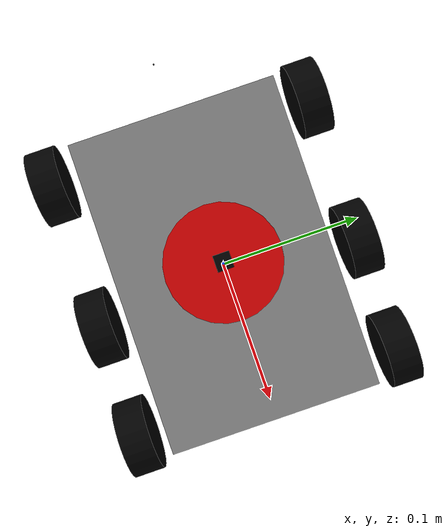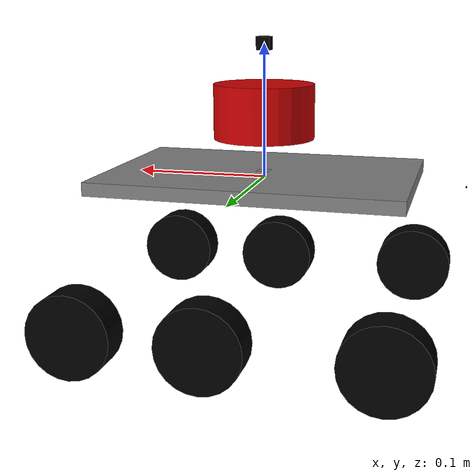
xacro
<?xml version="1.0"?>

<!-- Using initial specification from https://github.com/SyrianSpock/rover
Ideas taken from
http://www.generationrobots.com/blog/en/2015/02/robotic-simulation-scenarios-with-gazebo-and-ros/
-->

<robot name="sandbox_bot" xmlns:xacro="http://www.ros.org/wiki/xacro">
  <xacro:arg name="kinect" default="false"/>
  <xacro:arg name="camera" default="false"/>
  <xacro:arg name="gps" default="false"/>

  <!-- Degree-to-radian conversions -->
  <xacro:property name="degrees_45" value="0.785398163"/>
  <xacro:property name="degrees_90" value="1.57079633"/>
  <xacro:property name="degrees_180" value="3.1415926535897931" />

  <!-- body properties
         body_length is measured along the x axis,
         body_width along the y axis, and body_height along the z axis. -->
  <xacro:property name="body_length"    value="0.2286"/>
  <xacro:property name="body_width"     value="0.1524"/>
  <xacro:property name="body_height"    value="0.01"/>
  <xacro:property name="body_mass"      value="0.5"/>
  <xacro:property name="body_clearance" value="0.125"/>

  <xacro:property name="hub_dia"       value="0.100"/>
  <xacro:property name="tire_dia"      value="0.0625"/>
  <xacro:property name="tire_width"    value="0.024765"/>
  <xacro:property name="wheel_mass"    value="0.038980594"/>

  <!-- Wheel position properties -->
  <xacro:property name="wheelbase_xoffset" value="0.025"/>
  <xacro:property name="wheelbase_yoffset" value="0.022"/>
  <xacro:property name="wheel_bogie_d"    value="${3*tire_dia/2}"/>

  <xacro:property name="wheelbase_x"     value="${body_length/2 + wheelbase_xoffset - tire_dia/2}"/>
  <xacro:property name="wheelbase_track" value="${body_width/2 + wheelbase_yoffset + tire_width/2}"/>

  <!-- Sensor position properties -->
  <xacro:property name="scanner_position" value="0 0 0.05"/>

  <xacro:property name="axle_eff_limit" value="5.12766"/>
  <xacro:property name="axle_vel_limit" value="244.8696"/>

  <material name="body_mat">
    <color rgba="0.5 0.5 0.5 1"/>
  </material>
  <material name="tire_mat">
    <color rgba="0 0 0 1"/>
  </material>
  <material name="imu_mat">
    <color rgba="0 0 0 1"/>
  </material>

  <!-- Null inertial element. This is needed to make the model work with Gazebo. -->
  <xacro:macro name="null_inertial">
    <inertial>
      <mass value="0.001"/>
      <inertia ixx="0.001" ixy="0" ixz="0" iyy="0.001" iyz="0" izz="0.001"/>
    </inertial>
  </xacro:macro>

  <!-- Inertia of a solid cuboid. Width is measured along the x axis, depth along the y axis, and height along the z axis. -->
  <xacro:macro name="solid_cuboid_inertial"
               params="width depth height mass *origin">
    <inertial>
      <xacro:insert_block name="origin"/>
      <mass value="${mass}"/>
      <inertia ixx="${mass * (depth * depth + height * height) / 12}"
               ixy="0" ixz="0"
               iyy="${mass * (width * width + height * height) / 12}"
               iyz="0"
               izz="${mass * (width * width + depth * depth) / 12}"/>
    </inertial>
  </xacro:macro>

  <xacro:macro name="thick_walled_tube_inertial"
               params="inner_rad outer_rad height mass">
    <inertial>
      <mass value="${mass}"/>
      <inertia ixx="${(1 / 12) * mass * (3 * (inner_rad * inner_rad +
                    outer_rad * outer_rad) + height * height)}"
               ixy="0" ixz="0"
               iyy="${(1 / 12) * mass * (3 * (inner_rad * inner_rad +
                    outer_rad * outer_rad) + height * height)}"
               iyz="0"
               izz="${mass * (inner_rad * inner_rad +
                    outer_rad * outer_rad) / 2}"/>
    </inertial>
  </xacro:macro>

  <!-- The "wheel" macro defines an axle carrier, axle, and wheel. -->
  <xacro:macro name="wheel" params="lr_prefix fr_prefix lr_pos fr_pos">
    <joint name="${lr_prefix}_${fr_prefix}_axle" type="continuous">
      <parent link="base_link"/>
      <child link="${lr_prefix}_${fr_prefix}_wheel"/>
      <origin xyz="${fr_pos}
                   ${lr_pos}
                   ${- body_clearance + tire_dia/2}"
              rpy="${degrees_90} 0 0"/>
      <axis xyz="0 0 -1"/>
      <limit effort="${axle_eff_limit}" velocity="${axle_vel_limit}"/>
      <joint_properties damping="0.0" friction="0.0"/>
    </joint>
    <transmission name="${lr_prefix}_${fr_prefix}_axle_trans">
      <type>transmission_interface/SimpleTransmission</type>
      <joint name="${lr_prefix}_${fr_prefix}_axle">
        <hardwareInterface>hardware_interface/VelocityJointInterface</hardwareInterface>
      </joint>
      <actuator name="${lr_prefix}_${fr_prefix}_axle_act">
        <hardwareInterface>hardware_interface/VelocityJointInterface</hardwareInterface>
        <mechanicalReduction>10</mechanicalReduction>
      </actuator>
    </transmission>

    <link name="${lr_prefix}_${fr_prefix}_wheel">
      <xacro:visual_collision rpy="0 0 0" material="tire_mat">
         <cylinder radius="${tire_dia / 2}" length="${tire_width}"/>
      </xacro:visual_collision>

      <xacro:thick_walled_tube_inertial
          inner_rad="${hub_dia / 2}" outer_rad="${tire_dia / 2}"
          height="${tire_width}" mass="${wheel_mass}"/>
    </link>

    <gazebo reference="${lr_prefix}_${fr_prefix}_wheel">
      <material>Gazebo/Black</material>
    </gazebo>
  </xacro:macro>

  <xacro:macro name="visual_collision" params="rpy material *form" >
   <visual>
      <geometry>
        <xacro:insert_block name="form"/>
      </geometry>
      <origin xyz="0 0 0" rpy="${rpy}" />
      <material name="${material}" />
    </visual>
    <collision>
      <geometry>
        <xacro:insert_block name="form"/>
      </geometry>
      <origin xyz="0 0 0" rpy="${rpy}" />
    </collision>
  </xacro:macro>

  <!-- robot_footprint -->
  <link name="robot_footprint"></link>

  <joint name="robot_footprint_joint" type="fixed">
    <origin xyz="0 0 0" rpy="0 0 0" />
    <parent link="robot_footprint"/>
    <child link="base_link" />
  </joint>

  <!-- base_link must have geometry so that its axes can be displayed in rviz. -->
  <link name="base_link">
    <visual>
      <geometry>
        <box size="0.01 0.01 0.01"/>
      </geometry>
      <material name="body_mat"/>
    </visual>
  </link>
  <gazebo reference="base_link">
    <material>Gazebo/Green</material>
  </gazebo>

  <joint name="imu_joint" type="fixed">
     <parent link="base_link"/>
     <child  link="imu_link"/>
     <axis   xyz="1 0 0"/>
     <origin xyz="-0.15 0 0" rpy="0 0 -${degrees_180}"/>
  </joint>

  <link name="imu_link">
    <xacro:null_inertial />
    <xacro:visual_collision rpy="0 0 0" material="imu_mat">
      <box size="0.001 0.001 0.001"/>
    </xacro:visual_collision>
  </link>

  <link name="GPS_mount_link">
   <visual>
    <origin xyz="0 0 0" rpy="0 0 0" />
    <geometry>
      <box size="0.01 0.01 0.01"/>
    </geometry>
    <material name="black">
      <color rgba="0 0 0 1.0" />
    </material>
   </visual>
  </link>

  <joint name="GPS_mount_joint" type="fixed">
    <parent link="base_link" />
    <child link="GPS_mount_link" />
    <origin xyz="0 0 0.1" rpy="0 0 0" />
  </joint>

  <link name="GPS_link"> <!-- Insert GPS -->
  <visual>
    <origin xyz="0 0 0" rpy="0 0 0" />
    <geometry>
      <box size="0.01 0.01 0.01"/>
    </geometry>
    <material name="black">
      <color rgba="0.8 0.8 0.8 1.0" />
    </material>
  </visual>
  </link>

  <joint name="GPS_joint" type="fixed">
    <parent link="base_link" />
    <child link="GPS_link" />
    <origin xyz="0 0 0.1" rpy="0 0 0" />
  </joint>

  <!-- body -->
  <link name="body">
    <xacro:visual_collision rpy="0 0 ${-body_height / 2}" material="body_mat">
      <box size="${body_length} ${body_width} ${body_height}"/>
    </xacro:visual_collision>
    <xacro:solid_cuboid_inertial
        width="${body_length}" depth="${body_width}"
        height="${body_height}" mass="${body_mass}">
      <origin xyz="0 0 ${-body_height / 2}"/>
    </xacro:solid_cuboid_inertial>
  </link>
  <gazebo reference="body">
    <material>Gazebo/Grey</material>
  </gazebo>

  <joint name="base_link_to_chasis" type="fixed">
    <parent link="base_link"/>
    <child  link="body"/>
  </joint>

  <!-- Wheels -->
  <xacro:wheel lr_prefix="left_bogie" fr_prefix="front"
               lr_pos="${wheelbase_track}"
               fr_pos="${wheelbase_x}"
               />
  <xacro:wheel lr_prefix="left_bogie" fr_prefix="rear"
               lr_pos="${wheelbase_track}"
               fr_pos="${wheelbase_x - wheel_bogie_d}"
               />
  <xacro:wheel lr_prefix="left_rocker" fr_prefix="rear"
               lr_pos="${wheelbase_track}"
               fr_pos="${- wheelbase_x}"
               />
  <xacro:wheel lr_prefix="right_bogie" fr_prefix="front"
               lr_pos="${- wheelbase_track}"
               fr_pos="${wheelbase_x}"
               />
  <xacro:wheel lr_prefix="right_bogie" fr_prefix="rear"
               lr_pos="${- wheelbase_track}"
               fr_pos="${wheelbase_x - wheel_bogie_d}"
               />
  <xacro:wheel lr_prefix="right_rocker" fr_prefix="rear"
               lr_pos="${- wheelbase_track}"
               fr_pos="${- wheelbase_x}"
               />

  <gazebo>
    <plugin name="gazebo_ros_control" filename="libgazebo_ros_control.so">
      <robotNamespace>/</robotNamespace>
    </plugin>

    <!-- Differential Drive -->
    <plugin name="differential_drive_controller" filename="libgazebo_ros_diff_drive.so">
      <alwaysOn>true</alwaysOn>
      <updateRate>40</updateRate>
      <legacyMode>false</legacyMode>
      <leftJoint>left_bogie_rear_axle</leftJoint>
      <rightJoint>right_bogie_rear_axle</rightJoint>
      <wheelSeparation>0.4</wheelSeparation>
      <wheelDiameter>0.2</wheelDiameter>
      <torque>10</torque>
      <commandTopic>cmd_vel</commandTopic>
      <odometryTopic>odom</odometryTopic>
      <odometryFrame>odom</odometryFrame>
      <robotBaseFrame>robot_footprint</robotBaseFrame>
      <publishWheelTF>false</publishWheelTF>
      <publishWheelJointState>false</publishWheelJointState>
      <rosDebugLevel>na</rosDebugLevel>
      <wheelAcceleration>0</wheelAcceleration>
      <wheelTorque>5</wheelTorque>
      <odometrySource>world</odometrySource>
      <publishTf>1</publishTf>
      <publishOdomTF>true</publishOdomTF>
      <robotNamespace>/</robotNamespace>
      <broadcastTF>1</broadcastTF>
    </plugin>

   <xacro:if value="$(arg gps)">
    <plugin name="gps_sim" filename="libhector_gazebo_ros_gps.so">
      <robotNamespace>/</robotNamespace>
      <alwaysOn>true</alwaysOn>
      <updateRate>0.2</updateRate>
      <bodyName>GPS_link</bodyName>
      <frameId>GPS_link</frameId>
      <topicName>navsat/fix</topicName>
      <velocityTopicName>navsat/vel</velocityTopicName>
      <referenceLatitude>-34.9048422761</referenceLatitude>
      <referenceLongitude>-56.1529312152</referenceLongitude>
      <referenceHeading>0</referenceHeading>
      <referenceAltitude>0</referenceAltitude>
      <drift>0.0001 0.0001 0.0001</drift>
      <gaussianNoise>0.0 0.0 0.0</gaussianNoise>
      <velocityDrift>0 0 0</velocityDrift>
      <velocityGaussianNoise>0.05 0.05 0.05</velocityGaussianNoise>
    </plugin>
   </xacro:if>
  </gazebo>

  <!-- LIDAR sensor -->
  <xacro:include filename="$(find slam_project)/urdf/lidar.urdf.xacro" />
  <xacro:lidar name="laser" parent="body">
    <origin xyz="${scanner_position}" rpy="0 0 0"/>
  </xacro:lidar>

  <xacro:if value="$(arg camera)">
    <!-- Simple Camera -->
    <xacro:include filename="$(find slam_project)/urdf/camera.urdf.xacro" />
    <xacro:simplecamera name="camera" parent="base_link">
      <origin xyz="${body_length / 2 - 0.01} 0 ${body_height/2 + 0.01}" rpy="0 0 0"/>
    </xacro:simplecamera>
  </xacro:if>

  <xacro:if value="$(arg kinect)">
    <!-- Depth sensor-->
    <xacro:include filename="$(find slam_project)/urdf/depth_sensor.urdf.xacro" />
    <xacro:depth_sensor name="camera" parent="base_link">
      <origin xyz="${body_length / 2 - 0.01} 0 ${body_height/2 + 0.01}" rpy="0 0 0"/>
    </xacro:depth_sensor>
  </xacro:if>

</robot>

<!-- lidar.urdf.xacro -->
<!-- Using information from
http://gazebosim.org/tutorials?tut=ros_gzplugins#GPULaser
http://www.iroboapp.org/index.php?title=Adding_Hokuyo_Laser_Range_Finder_to_Turtlebot
-->

<robot xmlns:xacro="http://www.ros.org/wiki/xacro">
  <xacro:property name="degrees_180" value="3.1415926535897931" />
  <!-- Sensors properties -->
  <xacro:property name="scanner_length"  value="0.07570"/>
  <xacro:property name="scanner_width"   value="0.07570"/>
  <xacro:property name="scanner_height"  value="0.04080"/>
  <xacro:property name="scanner_mass"    value="0.2"/>
  <xacro:property name="sensor_colour"   value="0.8 0 0 1"/>

  <material name="lidar_mat">
    <color rgba="${sensor_colour}"/>
  </material>

  <xacro:macro name="lidar_model" params="name parent *origin">
    <joint name="hokuyo_joint" type="fixed">
      <axis xyz="0 1 0" />
      <xacro:insert_block name="origin" />
      <parent link="body"/>
      <child link="scanner"/>
    </joint>

    <!-- Hokuyo Laser -->
    <link name="scanner">
      <xacro:visual_collision rpy="0 0 0" material="lidar_mat">
        <cylinder radius="${scanner_width/2}" length="${scanner_height}"/>
      </xacro:visual_collision>
      <xacro:solid_cuboid_inertial
          width="${scanner_length}" depth="${scanner_width}"
          height="${scanner_height}" mass="${scanner_mass}">
        <origin xyz="0 0 0" rpy="0 0 0" />
      </xacro:solid_cuboid_inertial>
    </link>

  </xacro:macro>

  <xacro:macro name="lidar" params="name parent *origin">
    <xacro:lidar_model name="${name}" parent="${parent}">
      <xacro:insert_block name="origin" />
    </xacro:lidar_model>

    <!-- hokuyo -->
    <gazebo reference="scanner">
      <material>Gazebo/Blue</material>
      <sensor type="ray" name="head_hokuyo_sensor">
        <pose>${scanner_width/2} 0 0 0 0 -${degrees_180}</pose>
        <visualize>false</visualize>
        <update_rate>40</update_rate>
        <ray>
          <scan>
            <horizontal>
              <samples>360</samples>
              <resolution>1</resolution>
              <min_angle>-${degrees_180}</min_angle>
              <max_angle>${degrees_180}</max_angle>
            </horizontal>
          </scan>
          <range>
            <min>0.10</min>
            <max>10.0</max>
            <resolution>0.01</resolution>
          </range>
          <noise>
            <type>gaussian</type>
            <mean>0.0</mean>
            <stddev>0.01</stddev>
          </noise>
        </ray>
        <plugin name="gazebo_ros_head_hokuyo_controller" filename="libgazebo_ros_laser.so">
          <topicName>/scan</topicName>
          <frameName>scanner</frameName>
        </plugin>
      </sensor>
    </gazebo>
  </xacro:macro>

</robot>
